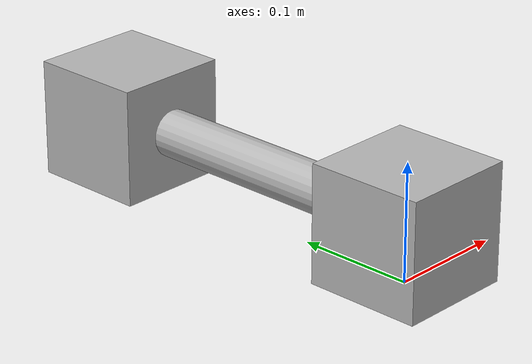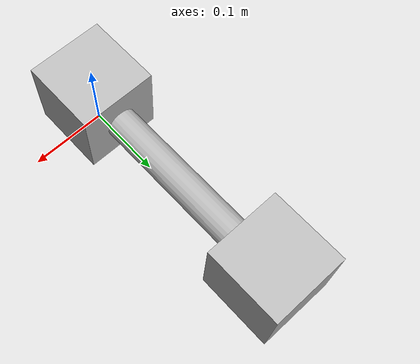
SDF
<?xml version="1.0"?>
<sdf version="1.4">
<model name="object_apriltag0">
  <static>false</static>
  <pose>0 0 0.05 0 0 0</pose>

    <link name="link1">
      <pose>0 0 0 0 0 0</pose>
      <inertial>
          <inertia>
            <ixx>0.001</ixx>
            <ixy>0</ixy>
            <ixz>0</ixz>
            <iyy>0.001</iyy>
            <iyz>0</iyz>
            <izz>0.001</izz>
          </inertia>
          <mass>0.01</mass>
      </inertial>
      <collision name="collision">
          <geometry>
          <box>
            <size>0.1 0.1 0.1</size>
          </box>
        </geometry>
        <surface>
          <friction>
            <ode>
              <mu>1000</mu>
              <mu2>1000</mu2>
          <fdir1>0 0 0</fdir1>
            </ode>
          </friction>
         </surface>
      </collision>
      <visual name="visual">

        <cast_shadows>false</cast_shadows>
        <geometry>
          <box>
            <size>0.1 0.1 0.1</size>
          </box>
        </geometry>
        <material>
          <script>
            <uri>model://april_tag0/materials/scripts/</uri>
	          <uri>model://april_tag0/materials/textures</uri>
            <name>AprilTag/Tag0</name>
          </script>
        </material>
      </visual>
    </link>

    <link name="link2">
      <pose>0 0.3 0 0 0 0</pose>
      <inertial>
          <inertia>
            <ixx>0.00</ixx>
            <ixy>0</ixy>
            <ixz>0</ixz>
            <iyy>0.001</iyy>
            <iyz>0</iyz>
            <izz>0.001</izz>
          </inertia>
          <mass>0.01</mass>
      </inertial>
      <collision name="collision">
          <geometry>
          <box>
            <size>0.1 0.1 0.1</size>
          </box>
        </geometry>
        <surface>
          <friction>
            <ode>
              <mu>1000</mu>
              <mu2>1000</mu2>
          <fdir1>0 0 0</fdir1>
            </ode>
          </friction>
         </surface>
      </collision>
      <visual name="visual">
        <cast_shadows>false</cast_shadows>
        <geometry>
          <box>
            <size>0.1 0.1 0.1</size>
          </box>
        </geometry>
        <material>
          <script>
            <uri>model://april_tag1/materials/scripts/</uri>
	          <uri>model://april_tag1/materials/textures</uri>
            <name>AprilTag/Tag1</name>
          </script>
        </material>
      </visual>
    </link>

    <link name="link3">
      <pose>0 0.15 0 1.57 0 0</pose>
      <inertial>
          <inertia>
            <ixx>0.001</ixx>
            <ixy>0</ixy>
            <ixz>0</ixz>
            <iyy>0.001</iyy>
            <iyz>0</iyz>
            <izz>0.001</izz>
          </inertia>
          <mass>0.01</mass>
      </inertial>
      <collision name="collision">
          <geometry>
          <cylinder>
            <radius>0.02</radius>
            <length>0.2</length>
          </cylinder>
        </geometry>
      </collision>
      <visual name="visual">
        <cast_shadows>false</cast_shadows>
        <geometry>
          <cylinder>
            <radius>0.02</radius>
            <length>0.2</length>
          </cylinder>
        </geometry>
      </visual>
    </link>

   <joint name="joint1" type="fixed">
      <parent>link1</parent>
      <child>link2</child>
      <axis>
        <xyz>0 0 0</xyz>
      </axis>
    </joint>

   <joint name="joint2" type="fixed">
      <parent>link1</parent>
      <child>link3</child>
      <axis>
        <xyz>0 0 0</xyz>
      </axis>
    </joint>

  </model>
</sdf>
